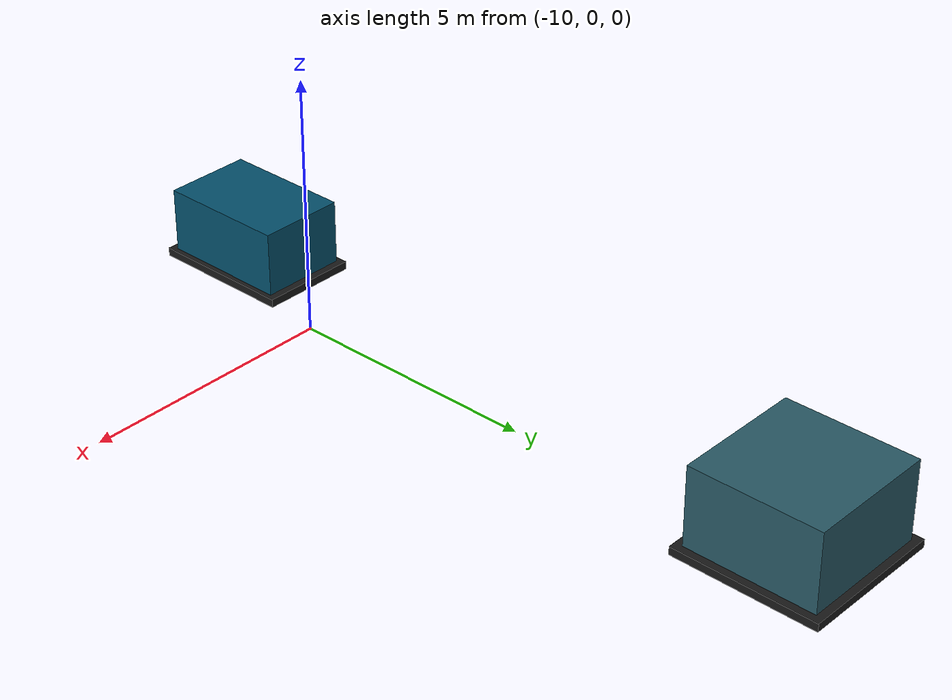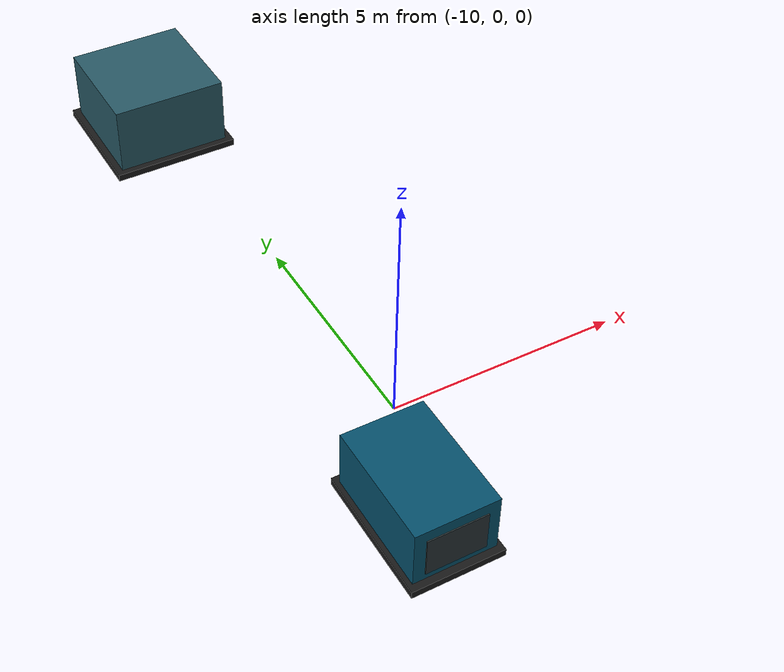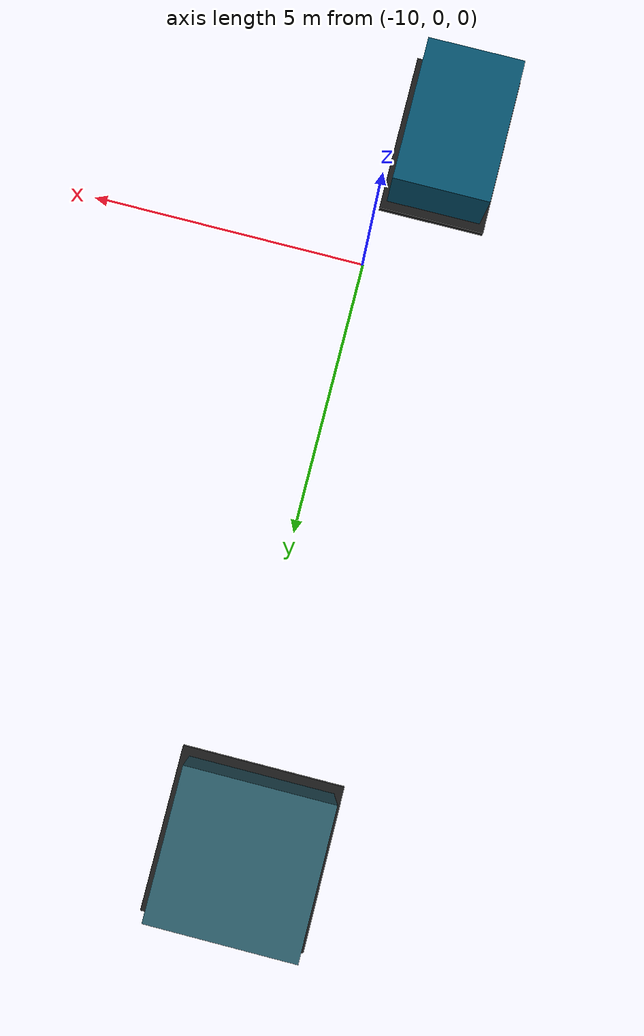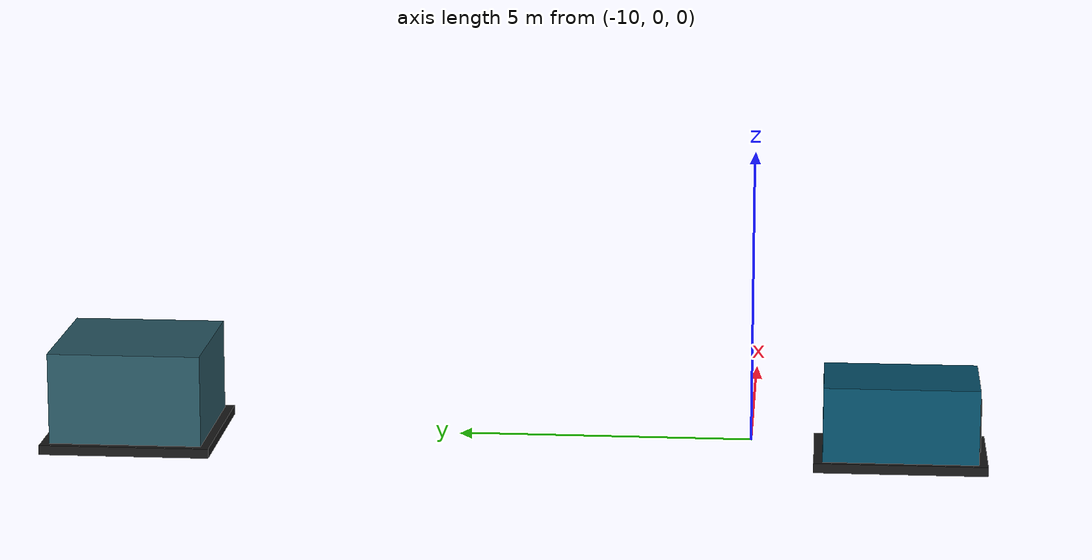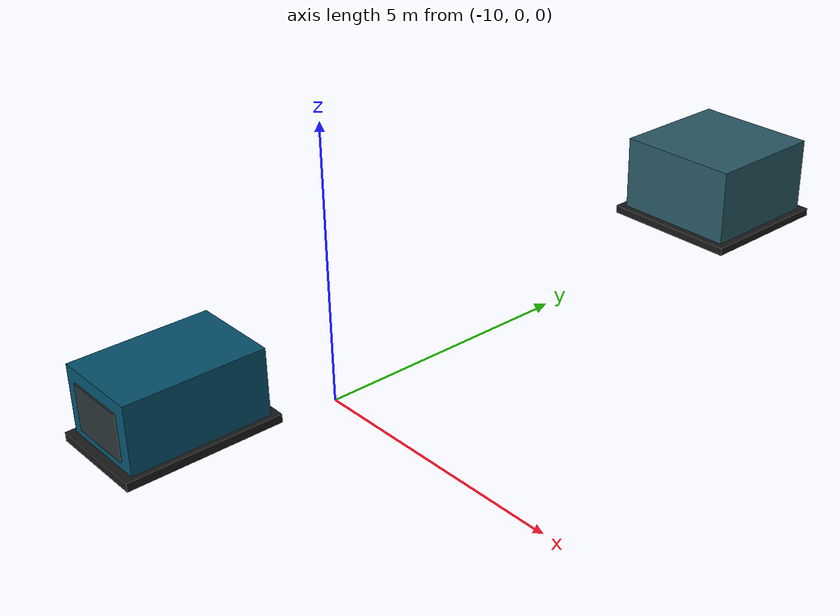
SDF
<sdf version="1.9">
 <world name="substation_extreme">
  <model name="capacitor_02">
   <static>true</static>
   <pose>-10.5 10.5 0 0 0 0</pose>
   <link name="link">
    <collision name="collision">
     <pose>0 0 0.9 0 0 0</pose>
     <geometry><box><size>2.76 2.76 1.8</size></box></geometry>
    </collision>
    <visual name="base">
     <pose>0 0 0.08 0 0 0</pose>
     <geometry><box><size>2.88 2.88 0.16</size></box></geometry>
     <material>
      <ambient>0.10 0.10 0.10 1</ambient>
      <diffuse>0.10 0.10 0.10 1</diffuse>
      <specular>0.08 0.08 0.08 1</specular>
     </material>
     <plugin filename="gz-sim-label-system" name="gz::sim::systems::Label"><label>170</label></plugin>
    </visual>
    <visual name="body">
     <pose>0 0 0.9 0 0 0</pose>
     <geometry><box><size>2.58 2.58 1.62</size></box></geometry>
     <material>
      <ambient>0.16 0.35 0.40 1</ambient>
      <diffuse>0.16 0.35 0.40 1</diffuse>
      <specular>0.08 0.08 0.08 1</specular>
     </material>
     <plugin filename="gz-sim-label-system" name="gz::sim::systems::Label"><label>170</label></plugin>
    </visual>
    <visual name="capacitor_-0.22_-0.25">
     <pose>-0.75 -0.66 0.98 0 0 0</pose>
     <geometry><cylinder><radius>0.1</radius><length>1.17</length></cylinder></geometry>
     <material>
      <ambient>0.72 0.74 0.70 1</ambient>
      <diffuse>0.72 0.74 0.70 1</diffuse>
      <specular>0.08 0.08 0.08 1</specular>
     </material>
     <plugin filename="gz-sim-label-system" name="gz::sim::systems::Label"><label>170</label></plugin>
    </visual>
    <visual name="capacitor_-0.22_0.0">
     <pose>0 -0.66 0.98 0 0 0</pose>
     <geometry><cylinder><radius>0.1</radius><length>1.17</length></cylinder></geometry>
     <material>
      <ambient>0.72 0.74 0.70 1</ambient>
      <diffuse>0.72 0.74 0.70 1</diffuse>
      <specular>0.08 0.08 0.08 1</specular>
     </material>
     <plugin filename="gz-sim-label-system" name="gz::sim::systems::Label"><label>170</label></plugin>
    </visual>
    <visual name="capacitor_-0.22_0.25">
     <pose>0.75 -0.66 0.98 0 0 0</pose>
     <geometry><cylinder><radius>0.1</radius><length>1.17</length></cylinder></geometry>
     <material>
      <ambient>0.72 0.74 0.70 1</ambient>
      <diffuse>0.72 0.74 0.70 1</diffuse>
      <specular>0.08 0.08 0.08 1</specular>
     </material>
     <plugin filename="gz-sim-label-system" name="gz::sim::systems::Label"><label>170</label></plugin>
    </visual>
    <visual name="capacitor_0.22_-0.25">
     <pose>-0.75 0.66 0.98 0 0 0</pose>
     <geometry><cylinder><radius>0.1</radius><length>1.17</length></cylinder></geometry>
     <material>
      <ambient>0.72 0.74 0.70 1</ambient>
      <diffuse>0.72 0.74 0.70 1</diffuse>
      <specular>0.08 0.08 0.08 1</specular>
     </material>
     <plugin filename="gz-sim-label-system" name="gz::sim::systems::Label"><label>170</label></plugin>
    </visual>
    <visual name="capacitor_0.22_0.0">
     <pose>0 0.66 0.98 0 0 0</pose>
     <geometry><cylinder><radius>0.1</radius><length>1.17</length></cylinder></geometry>
     <material>
      <ambient>0.72 0.74 0.70 1</ambient>
      <diffuse>0.72 0.74 0.70 1</diffuse>
      <specular>0.08 0.08 0.08 1</specular>
     </material>
     <plugin filename="gz-sim-label-system" name="gz::sim::systems::Label"><label>170</label></plugin>
    </visual>
    <visual name="capacitor_0.22_0.25">
     <pose>0.75 0.66 0.98 0 0 0</pose>
     <geometry><cylinder><radius>0.1</radius><length>1.17</length></cylinder></geometry>
     <material>
      <ambient>0.72 0.74 0.70 1</ambient>
      <diffuse>0.72 0.74 0.70 1</diffuse>
      <specular>0.08 0.08 0.08 1</specular>
     </material>
     <plugin filename="gz-sim-label-system" name="gz::sim::systems::Label"><label>170</label></plugin>
    </visual>
   </link>
  </model>
  <model name="cabinet_west">
   <static>true</static>
   <pose>-11 -2.5 0 0 0 0</pose>
   <link name="link">
    <collision name="collision">
     <pose>0 0 0.75 0 0 0</pose>
     <geometry><box><size>1.84 2.76 1.5</size></box></geometry>
    </collision>
    <visual name="base">
     <pose>0 0 0.08 0 0 0</pose>
     <geometry><box><size>1.92 2.88 0.16</size></box></geometry>
     <material>
      <ambient>0.10 0.10 0.10 1</ambient>
      <diffuse>0.10 0.10 0.10 1</diffuse>
      <specular>0.08 0.08 0.08 1</specular>
     </material>
    </visual>
    <visual name="body">
     <pose>0 0 0.75 0 0 0</pose>
     <geometry><box><size>1.72 2.58 1.35</size></box></geometry>
     <material>
      <ambient>0.02 0.32 0.43 1</ambient>
      <diffuse>0.02 0.32 0.43 1</diffuse>
      <specular>0.08 0.08 0.08 1</specular>
     </material>
    </visual>
    <visual name="front_panel">
     <pose>0 -1.305 0.75 0 0 0</pose>
     <geometry><box><size>1.24 0.025 0.87</size></box></geometry>
     <material>
      <ambient>0.16 0.20 0.21 1</ambient>
      <diffuse>0.16 0.20 0.21 1</diffuse>
      <specular>0.08 0.08 0.08 1</specular>
     </material>
    </visual>
   </link>
  </model>
 </world>
</sdf>
